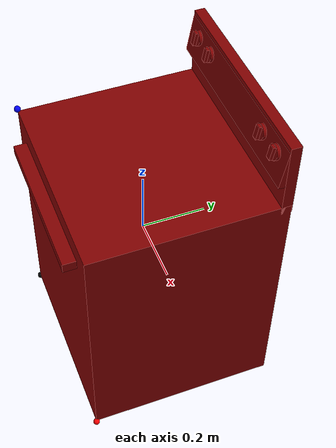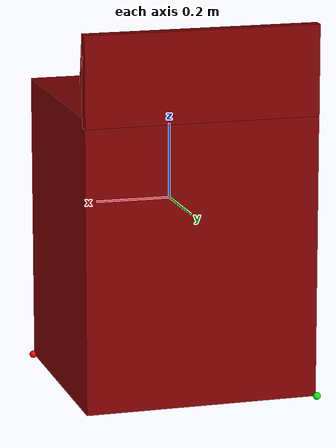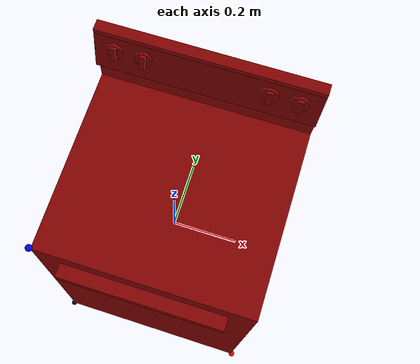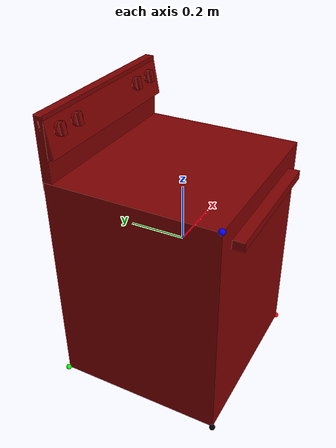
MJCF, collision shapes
<mujoco model="model">
  <asset>
    <texture file="visuals/material_0.png" name="tex-model" type="2d"/>
    <texture type="2d" name="image0" file="visuals/image0.png"/>
    <material name="model" reflectance="0.5" texrepeat="1 1" texture="tex-model" texuniform="false"/>
    <material name="Stove" texture="image0" specular="0.5" shininess="0.25"/>
    <mesh file="visuals/model_0.obj" name="model_0_vis" scale="1 1 1"/>
    <mesh file="visuals/knob_rear_right_0.obj" name="knob_rear_right_0_vis" scale="1 1 1"/>
    <mesh file="visuals/knob_front_left_0.obj" name="knob_front_left_0_vis" scale="1 1 1"/>
    <mesh file="visuals/knob_front_right_0.obj" name="knob_front_right_0_vis" scale="1 1 1"/>
    <mesh file="visuals/knob_rear_left_0.obj" name="knob_rear_left_0_vis" scale="1 1 1"/>
  </asset>
  <default>
    <default class="visual">
      <geom conaffinity="0" contype="0" group="1" type="mesh"/>
    </default>
    <default class="collision">
      <geom group="0" rgba="0.5 0 0 0.5"/>
    </default>
  </default>
  <worldbody>
    <body>
      <!-- exterior bounding box points -->
      <site rgba="0 0 0 1" size="0.01" pos="-0.315 -0.275 -0.49" name="ext_p0"/>
      <site rgba="1 0 0 1" size="0.01" pos="0.315 -0.275 -0.49" name="ext_px"/>
      <site rgba="0 1 0 1" size="0.01" pos="-0.315 0.312 -0.49" name="ext_py"/>
      <site rgba="0 0 1 1" size="0.01" pos="-0.315 -0.275 0.295" name="ext_pz"/>
      <!-- interior bounding box points -->
      <site rgba="0.5 0.5 0.5 1" size="0.01" pos="0 0 0" name="int_p0"/>
      <site rgba="1 1 0 1" size="0.01" pos="0 0 0" name="int_px"/>
      <site rgba="0 1 1 1" size="0.01" pos="0 0 0" name="int_py"/>
      <site rgba="1 0 1 1" size="0.01" pos="0 0 0" name="int_pz"/>
      <body name="object">
        <geom solimp="0.998 0.998 0.001" solref="0.001 1" density="100" friction="0.95 0.3 0.1" type="mesh" mesh="model_0_vis" material="Stove" class="visual"/>
        <site name="burner_on_front_left" pos="-0.139 -0.121 0.287" size="0.08 0.0001" rgba="1 0.4 0.4 0.5" type="cylinder"/>
        <site name="burner_on_front_right" pos="0.139 -0.121 0.287" size="0.08 0.0001" rgba="1 0.4 0.4 0.5" type="cylinder"/>
        <site name="burner_on_back_left" pos="-0.139 0.122 0.287" size="0.08 0.0001" rgba="1 0.4 0.4 0.5" type="cylinder"/>
        <site name="burner_on_back_right" pos="0.139 0.122 0.287" size="0.08 0.0001" rgba="1 0.4 0.4 0.5" type="cylinder"/>
        <!-- Main -->
        <geom class="collision" type="box" pos="0 0.017 -0.1" size="0.312 0.292 0.39"/>
        <!-- Oven Handle -->
        <geom class="collision" type="box" pos="0 -0.29 0.21" size="0.24 0.025 0.015"/>
        <!-- Back Display Panel -->
        <geom class="collision" type="box" pos="0 0.295 0.385" size="0.312 0.016 0.12"/>
        <!-- Control Panel -->
        <geom class="collision" type="box" pos="0 0.278 0.43" size="0.312 0.01 0.06" axisangle="1 0 0 -10"/>
        <body name="knob_rear_right">
          <joint axis="0 0.9848 -0.1736" name="knob_rear_right_joint" damping="1" pos="0.254 0.268 0.45"/>
          <geom solimp="0.998 0.998 0.001" solref="0.001 1" density="100" friction="0.95 0.3 0.1" type="mesh" mesh="knob_rear_right_0_vis" material="Stove" class="visual"/>
          <geom class="collision" type="cylinder" pos="0.254 0.268 0.45" size="0.023 0.006 0" axisangle="1 0 0 80"/>
          <geom class="collision" type="box" pos="0.254 0.258 0.452" size="0.0084 0.006 0.0205" axisangle="1 0 0 -10"/>
        </body>
        <body name="knob_front_left">
          <joint axis="0 0.9848 -0.1736" name="knob_front_left_joint" damping="1" pos="-0.172 0.268 0.45"/>
          <geom solimp="0.998 0.998 0.001" solref="0.001 1" density="100" friction="0.95 0.3 0.1" type="mesh" mesh="knob_front_left_0_vis" material="Stove" class="visual"/>
          <geom class="collision" type="cylinder" pos="-0.172 0.268 0.45" size="0.023 0.006 0" axisangle="1 0 0 80"/>
          <geom class="collision" type="box" pos="-0.172 0.258 0.452" size="0.0084 0.006 0.0205" axisangle="1 0 0 -10"/>
        </body>
        <body name="knob_front_right">
          <joint axis="0 0.9848 -0.1736" name="knob_front_right_joint" damping="1" pos="0.172 0.268 0.45"/>
          <geom solimp="0.998 0.998 0.001" solref="0.001 1" density="100" friction="0.95 0.3 0.1" type="mesh" mesh="knob_front_right_0_vis" material="Stove" class="visual"/>
          <geom class="collision" type="cylinder" pos="0.172 0.268 0.45" size="0.023 0.006 0" axisangle="1 0 0 80"/>
          <geom class="collision" type="box" pos="0.172 0.258 0.452" size="0.0084 0.006 0.0205" axisangle="1 0 0 -10"/>
        </body>
        <body name="knob_rear_left">
          <joint axis="0 0.9848 -0.1736" name="knob_rear_left_joint" damping="1" pos="-0.254 0.268 0.45"/>
          <geom solimp="0.998 0.998 0.001" solref="0.001 1" density="100" friction="0.95 0.3 0.1" type="mesh" mesh="knob_rear_left_0_vis" material="Stove" class="visual"/>
          <geom class="collision" type="cylinder" pos="-0.254 0.268 0.45" size="0.023 0.006 0" axisangle="1 0 0 80"/>
          <geom class="collision" type="box" pos="-0.254 0.258 0.452" size="0.0084 0.006 0.0205" axisangle="1 0 0 -10"/>
        </body>
      </body>
    </body>
  </worldbody>
</mujoco>
